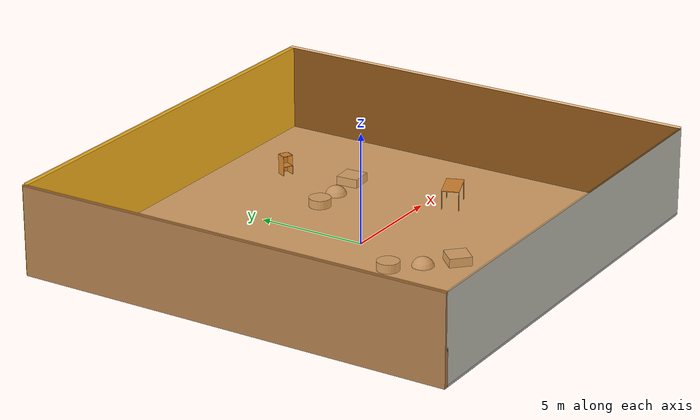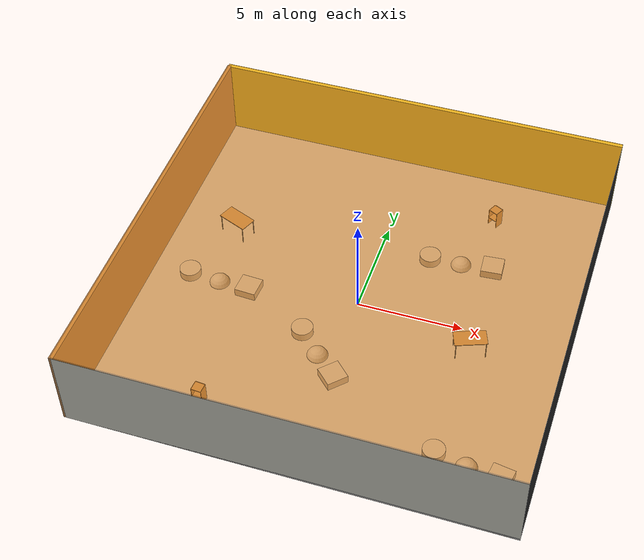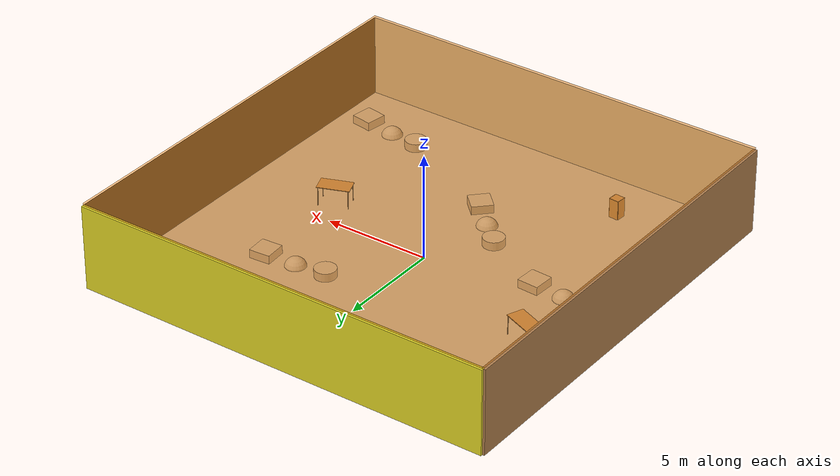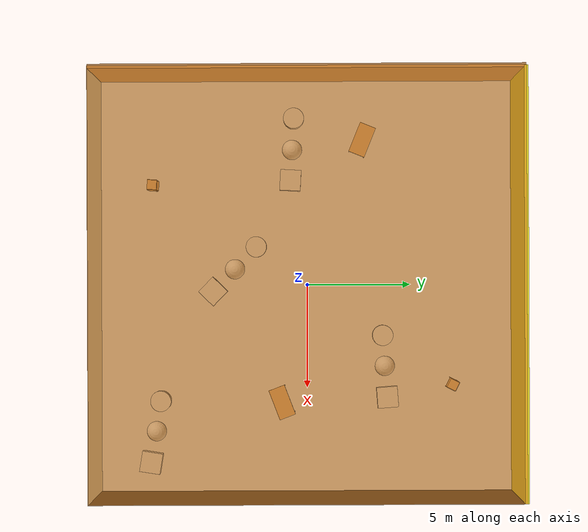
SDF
<sdf version="1.4">
 <world name="default">
  <physics type="ode">
   <max_step_size>0.001</max_step_size>
   <real_time_factor>1</real_time_factor>
   <real_time_update_rate>1000</real_time_update_rate>
   <gravity>0 0 -9.8</gravity>
  </physics>
  <scene><ambient>0.4 0.4 0.4 1</ambient><background>0.7 0.7 0.7 1</background><shadows>1</shadows></scene>
  <model name="Surrounding">
   <static>1</static>
   <link name="Ceiling">
    <collision name="Ceiling_Collision"><geometry><box><size>20 20 0.1</size></box></geometry></collision>
    <visual name="Ceiling_Visual">
     <geometry><box><size>20 20 0.1</size></box></geometry>
     <material>
      <script>
       <uri>file://media/materials/scripts/gazebo.material</uri>
       <name>Gazebo/OrangeTransparent</name>
      </script>
     </material>
    </visual>
    <pose>0 0 4.05 0 0 0</pose>
   </link>
   <link name="Wall_South">
    <collision name="Wall_South_Collision">
     <geometry><box><size>20 0 4</size></box></geometry>
     <pose>0 0 2 0 -0 0</pose>
    </collision>
    <visual name="Wall_South_Visual">
     <pose>0 0 2 0 -0 0</pose>
     <geometry><box><size>20 0 4</size></box></geometry>
     <material>
      <script><uri>file://media/materials/scripts/gazebo.material</uri><name>Gazebo/PaintedWall</name></script>
     </material>
    </visual>
    <velocity_decay><linear>0</linear><angular>0</angular></velocity_decay>
    <pose>0 -10 0 0 -0 0</pose>
   </link>
   <link name="Wall_East">
    <collision name="Wall_21_Collision">
     <geometry><box><size>20 0 4</size></box></geometry>
     <pose>0 0 2 0 -0 0</pose>
    </collision>
    <visual name="Wall_21_Visual">
     <pose>0 0 2 0 -0 0</pose>
     <geometry><box><size>20 0 4</size></box></geometry>
     <material>
      <script><uri>file://media/materials/scripts/gazebo.material</uri><name>Gazebo/Black</name></script>
     </material>
    </visual>
    <velocity_decay><linear>0</linear><angular>0</angular></velocity_decay>
    <pose>10 0 0 0 -0 1.5708</pose>
   </link>
   <link name="Wall_North">
    <collision name="Wall_22_Collision">
     <geometry><box><size>20 0.2 4</size></box></geometry>
     <pose>0 0 2 0 -0 0</pose>
    </collision>
    <visual name="Wall_22_Visual">
     <pose>0 0 2 0 -0 0</pose>
     <geometry><box><size>20 0.2 4</size></box></geometry>
     <material>
      <script><uri>file://media/materials/scripts/gazebo.material</uri><name>Gazebo/YellowGlow</name></script>
     </material>
    </visual>
    <velocity_decay><linear>0</linear><angular>0</angular></velocity_decay>
    <pose>0 10 0 0 -0 0</pose>
   </link>
   <link name="Wall_West">
    <collision name="Wall_23_Collision">
     <geometry><box><size>20 0.2 4</size></box></geometry>
     <pose>0 0 2 0 -0 0</pose>
    </collision>
    <visual name="Wall_23_Visual">
     <pose>0 0 2 0 -0 0</pose>
     <geometry><box><size>20 0.2 4</size></box></geometry>
     <material>
      <script><uri>file://media/materials/scripts/gazebo.material</uri><name>Gazebo/Wood</name></script>
     </material>
    </visual>
    <velocity_decay><linear>0</linear><angular>0</angular></velocity_decay>
    <pose>-10 0 0 0 0 -1.5708</pose>
   </link>
   <link name="Ground_link">
    <collision name="collision">
     <pose>0 0 .05 0 -0 0</pose>
     <geometry><box><size>20 20 0.1</size></box></geometry>
    </collision>
    <visual name="visual">
     <pose>0 0 .05 0 -0 0</pose>
     <geometry><box><size>20 20 0.1</size></box></geometry>
     <material>
      <script><uri>file://media/materials/scripts/gazebo.material</uri><name>Gazebo/Pioneer2Body</name></script>
     </material>
    </visual>
   </link>
   <static>1</static>
  </model>
  <spherical_coordinates>
   <surface_model>EARTH_WGS84</surface_model>
   <latitude_deg>0</latitude_deg>
   <longitude_deg>0</longitude_deg>
   <elevation>0</elevation>
   <heading_deg>0</heading_deg>
  </spherical_coordinates>
  <light name="lightball_0" type="diffuse">
   <diffuse>0.8 0.8 0.8 1</diffuse>
   <specular>0.2 0.2 0.2 1</specular>
   <attenuation>
    <range>100</range>
    <constant>0.7</constant>
    <linear>0.01</linear>
    <quadratic>0.001</quadratic>
   </attenuation>
   <direction>-0.5 0.1 -0.9</direction>
   <pose>-0.727205203746 -9.5771635379 3.66521764665 0 0 0</pose>
  </light>
  <light name="lightball_1" type="diffuse">
   <diffuse>0.8 0.8 0.8 1</diffuse>
   <specular>0.2 0.2 0.2 1</specular>
   <attenuation>
    <range>100</range>
    <constant>0.7</constant>
    <linear>0.01</linear>
    <quadratic>0.001</quadratic>
   </attenuation>
   <direction>-0.5 0.1 -0.9</direction>
   <pose>0.329632601272 8.0975909528 2.93602602369 0 0 0</pose>
  </light>
  <light name="lightball_2" type="diffuse">
   <diffuse>0.8 0.8 0.8 1</diffuse>
   <specular>0.2 0.2 0.2 1</specular>
   <attenuation>
    <range>100</range>
    <constant>0.7</constant>
    <linear>0.01</linear>
    <quadratic>0.001</quadratic>
   </attenuation>
   <direction>-0.5 0.1 -0.9</direction>
   <pose>-6.45166914155 -8.98724785659 1.76162084424 0 0 0</pose>
  </light>
  <light name="lightball_3" type="diffuse">
   <diffuse>0.8 0.8 0.8 1</diffuse>
   <specular>0.2 0.2 0.2 1</specular>
   <attenuation>
    <range>100</range>
    <constant>0.7</constant>
    <linear>0.01</linear>
    <quadratic>0.001</quadratic>
   </attenuation>
   <direction>-0.5 0.1 -0.9</direction>
   <pose>-0.745831827809 -8.45137527083 1.53150133429 0 0 0</pose>
  </light>
  <light name="lightball_4" type="diffuse">
   <diffuse>0.8 0.8 0.8 1</diffuse>
   <specular>0.2 0.2 0.2 1</specular>
   <attenuation>
    <range>100</range>
    <constant>0.7</constant>
    <linear>0.01</linear>
    <quadratic>0.001</quadratic>
   </attenuation>
   <direction>-0.5 0.1 -0.9</direction>
   <pose>0.762604944878 -0.665542343357 3.61462183623 0 0 0</pose>
  </light>
  <light name="lightball_5" type="diffuse">
   <diffuse>0.8 0.8 0.8 1</diffuse>
   <specular>0.2 0.2 0.2 1</specular>
   <attenuation>
    <range>100</range>
    <constant>0.7</constant>
    <linear>0.01</linear>
    <quadratic>0.001</quadratic>
   </attenuation>
   <direction>-0.5 0.1 -0.9</direction>
   <pose>-9.20077498889 0.523864704193 0.785094983218 0 0 0</pose>
  </light>
  <light name="lightball_6" type="diffuse">
   <diffuse>0.8 0.8 0.8 1</diffuse>
   <specular>0.2 0.2 0.2 1</specular>
   <attenuation>
    <range>100</range>
    <constant>0.7</constant>
    <linear>0.01</linear>
    <quadratic>0.001</quadratic>
   </attenuation>
   <direction>-0.5 0.1 -0.9</direction>
   <pose>-5.19887700852 -2.20131295675 3.79668703351 0 0 0</pose>
  </light>
  <light name="lightball_7" type="diffuse">
   <diffuse>0.8 0.8 0.8 1</diffuse>
   <specular>0.2 0.2 0.2 1</specular>
   <attenuation>
    <range>100</range>
    <constant>0.7</constant>
    <linear>0.01</linear>
    <quadratic>0.001</quadratic>
   </attenuation>
   <direction>-0.5 0.1 -0.9</direction>
   <pose>2.26747514796 8.66274138696 3.87639495554 0 0 0</pose>
  </light>
  <light name="lightball_8" type="diffuse">
   <diffuse>0.8 0.8 0.8 1</diffuse>
   <specular>0.2 0.2 0.2 1</specular>
   <attenuation>
    <range>100</range>
    <constant>0.7</constant>
    <linear>0.01</linear>
    <quadratic>0.001</quadratic>
   </attenuation>
   <direction>-0.5 0.1 -0.9</direction>
   <pose>-6.17443313687 0.10422972715 3.24003481937 0 0 0</pose>
  </light>
  <light name="lightball_9" type="diffuse">
   <diffuse>0.8 0.8 0.8 1</diffuse>
   <specular>0.2 0.2 0.2 1</specular>
   <attenuation>
    <range>100</range>
    <constant>0.7</constant>
    <linear>0.01</linear>
    <quadratic>0.001</quadratic>
   </attenuation>
   <direction>-0.5 0.1 -0.9</direction>
   <pose>5.73689909197 0.597121733811 2.99534831443 0 0 0</pose>
  </light>
  <include>
   <uri>model://textured_shapes</uri>
   <pose>-6.57371586761 -0.720438285368 0 0 0 1.51667370739</pose>
  </include>
  <include><uri>model://table</uri><pose>-6.95442447101 2.65621799719 0 0 0 2.7569218932</pose></include>
  <include><uri>model://cabinet</uri><pose>-4.83519360448 -7.44244387947 0 0 0 1.49174700192</pose></include>
  <include>
   <uri>model://textured_shapes</uri>
   <pose>-0.778202150204 -3.51235702323 0 0 0 0.799865139307</pose>
  </include>
  <include><uri>model://table</uri><pose>5.62727302805 -1.22328465117 0 0 0 0.365846066904</pose></include>
  <include>
   <uri>model://textured_shapes</uri>
   <pose>3.94455911816 3.75602839759 0 0 0 1.64443230352</pose>
  </include>
  <include><uri>model://cabinet</uri><pose>4.8015833311 6.98366972791 0 0 0 1.11076760648</pose></include>
  <include>
   <uri>model://textured_shapes</uri>
   <pose>7.0846939391 -7.33969402832 0 0 0 1.41295202934</pose>
  </include>
 </world>
</sdf>

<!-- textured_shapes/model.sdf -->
<sdf version="1.6">
  <model name="textured_shapes">
    <pose>0 0 0.5 0 0 0</pose>
    <link name="box">
      <pose>0 -1.5 0 0 0 0</pose>
      <collision name="collision">
        <geometry>
          <box>
            <size>1 1 1</size>
          </box>
        </geometry>
      </collision>
      <visual name="visual">
        <geometry>
          <box>
            <size>1 1 1</size>
          </box>
        </geometry>
        <material>
          <script>
            <uri>model://../model_source/models/textured_shapes/materials/scripts</uri>
            <uri>model://../model_source/models/textured_shapes/materials/textures</uri>
            <name>TexturedShape/Squares</name>
          </script>
        </material>
      </visual>
    </link>
    <link name="sphere">
      <collision name="collision">
        <geometry>
          <sphere>
            <radius>0.5</radius>
          </sphere>
        </geometry>
      </collision>
      <visual name="visual">
        <geometry>
          <sphere>
            <radius>0.5</radius>
          </sphere>
        </geometry>
        <material>
          <script>
            <uri>model://../model_source/models/textured_shapes/materials/scripts</uri>
            <uri>model://../model_source/models/textured_shapes/materials/textures</uri>
            <name>TexturedShape/Squares</name>
          </script>
        </material>
      </visual>
    </link>
    <link name="cylinder">
      <pose>0 1.5 0 0 0 0</pose>
      <collision name="collision">
        <geometry>
          <cylinder>
            <radius>0.5</radius>
            <length>1</length>
          </cylinder>
        </geometry>
      </collision>
      <visual name="visual">
        <geometry>
          <cylinder>
            <radius>0.5</radius>
            <length>1</length>
          </cylinder>
        </geometry>
        <material>
          <script>
            <uri>model://../model_source/models/textured_shapes/materials/scripts</uri>
            <uri>model://../model_source/models/textured_shapes/materials/textures</uri>
            <name>TexturedShape/Squares</name>
          </script>
        </material>
      </visual>
    </link>
  </model>
</sdf>

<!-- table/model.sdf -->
<sdf version="1.5">
  <model name="table">
    <static>true</static>
    <link name="link">
      <collision name="surface">
        <pose>0 0 1.0 0 0 0</pose>
        <geometry>
          <box>
            <size>1.5 0.8 0.03</size>
          </box>
        </geometry>
        <surface>
          <friction>
            <ode>
              <mu>0.6</mu>
              <mu2>0.6</mu2>
            </ode>
          </friction>
        </surface>
      </collision>
      <visual name="visual1">
        <pose>0 0 1.0 0 0 0</pose>
        <geometry>
          <box>
            <size>1.5 0.8 0.03</size>
          </box>
        </geometry>
        <material>
          <script>
            <uri>model://media/materials/scripts/gazebo.material</uri>
            <name>Gazebo/Wood</name>
          </script>
        </material>
      </visual>
      <collision name="front_left_leg">
        <pose>0.68 0.38 0.5 0 0 0</pose>
        <geometry>
          <cylinder>
            <radius>0.02</radius>
            <length>1.0</length>
          </cylinder>
        </geometry>
      </collision>
      <visual name="front_left_leg">
        <pose>0.68 0.38 0.5 0 0 0</pose>
        <geometry>
          <cylinder>
            <radius>0.02</radius>
            <length>1.0</length>
          </cylinder>
        </geometry>
        <material>
          <script>
            <uri>model://media/materials/scripts/gazebo.material</uri>
            <name>Gazebo/Grey</name>
          </script>
        </material>
      </visual>
      <collision name="front_right_leg">
        <pose>0.68 -0.38 0.5 0 0 0</pose>
        <geometry>
          <cylinder>
            <radius>0.02</radius>
            <length>1.0</length>
          </cylinder>
        </geometry>
      </collision>
      <visual name="front_right_leg">
        <pose>0.68 -0.38 0.5 0 0 0</pose>
        <geometry>
          <cylinder>
            <radius>0.02</radius>
            <length>1.0</length>
          </cylinder>
        </geometry>
        <material>
          <script>
            <uri>model://media/materials/scripts/gazebo.material</uri>
            <name>Gazebo/Grey</name>
          </script>
        </material>
      </visual>
      <collision name="back_right_leg">
        <pose>-0.68 -0.38 0.5 0 0 0</pose>
        <geometry>
          <cylinder>
            <radius>0.02</radius>
            <length>1.0</length>
          </cylinder>
        </geometry>
      </collision>
      <visual name="back_right_leg">
        <pose>-0.68 -0.38 0.5 0 0 0</pose>
        <geometry>
          <cylinder>
            <radius>0.02</radius>
            <length>1.0</length>
          </cylinder>
        </geometry>
        <material>
          <script>
            <uri>model://media/materials/scripts/gazebo.material</uri>
            <name>Gazebo/Grey</name>
          </script>
        </material>
      </visual>
      <collision name="back_left_leg">
        <pose>-0.68 0.38 0.5 0 0 0</pose>
        <geometry>
          <cylinder>
            <radius>0.02</radius>
            <length>1.0</length>
          </cylinder>
        </geometry>
      </collision>
      <visual name="back_left_leg">
        <pose>-0.68 0.38 0.5 0 0 0</pose>
        <geometry>
          <cylinder>
            <radius>0.02</radius>
            <length>1.0</length>
          </cylinder>
        </geometry>
        <material>
          <script>
            <uri>model://media/materials/scripts/gazebo.material</uri>
            <name>Gazebo/Grey</name>
          </script>
        </material>
      </visual>
    </link>
  </model>
</sdf>

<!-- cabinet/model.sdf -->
<sdf version="1.5">
  <model name="cabinet">
    <static>true</static>
    <link name="cabinet_bottom_plate">
      <inertial>
        <pose>0 0 -1 0 0 0</pose>
        <inertia>
          <ixx>2.050000</ixx>
          <ixy>0</ixy>
          <ixz>0</ixz>
          <iyy>2.050000</iyy>
          <iyz>0</iyz>
          <izz>2.050000</izz>
        </inertia>
        <mass>25.000000</mass>
      </inertial>
      <collision name="cabinet_bottom_plate_geom">
        <pose>0 0 0.010000 0 0 0</pose>
        <geometry>
          <box>
            <size>0.450000 0.450000 0.020000</size>
          </box>
        </geometry>
      </collision>
      <visual name="cabinet_bottom_plate_geom_visual">
        <pose>0 0 0.010000 0 0 0</pose>
        <geometry>
          <box>
            <size>0.450000 0.450000 0.020000</size>
          </box>
        </geometry>
        <material>
          <script>
            <uri>model://media/materials/scripts/gazebo.material</uri>
            <name>Gazebo/Wood</name>
          </script>
        </material>
      </visual>
      <collision name="cabinet_bottom_plate_geom_cabinet_back_plate">
        <pose>0.235000 0 0.510000 0 0 0</pose>
        <geometry>
          <box>
            <size>0.020000 0.450000 1.020000</size>
          </box>
        </geometry>
      </collision>
      <visual name="cabinet_bottom_plate_geom_cabinet_back_plate_visual">
        <pose>0.235000 0 0.510000 0 0 0</pose>
        <geometry>
          <box>
            <size>0.020000 0.450000 1.020000</size>
          </box>
        </geometry>
        <material>
          <script>
            <uri>model://media/materials/scripts/gazebo.material</uri>
            <name>Gazebo/Wood</name>
          </script>
        </material>
      </visual>
      <collision name="cabinet_bottom_plate_geom_cabinet_left_plate">
        <pose>0 0.235000 0.510000 0 0 0</pose>
        <geometry>
          <box>
            <size>0.450000 0.020000 1.020000</size>
          </box>
        </geometry>
      </collision>
      <visual name="cabinet_bottom_plate_geom_cabinet_left_plate_visual">
        <pose>0 0.235000 0.510000 0 0 0</pose>
        <geometry>
          <box>
            <size>0.450000 0.020000 1.020000</size>
          </box>
        </geometry>
        <material>
          <script>
            <uri>model://media/materials/scripts/gazebo.material</uri>
            <name>Gazebo/Wood</name>
          </script>
        </material>
      </visual>
      <collision name="cabinet_bottom_plate_geom_cabinet_middle_plate">
        <pose>0 0 0.510000 0 0 0</pose>
        <geometry>
          <box>
            <size>0.450000 0.450000 0.020000</size>
          </box>
        </geometry>
      </collision>
      <visual name="cabinet_bottom_plate_geom_cabinet_middle_plate_visual">
        <pose>0 0 0.510000 0 0 0</pose>
        <geometry>
          <box>
            <size>0.450000 0.450000 0.020000</size>
          </box>
        </geometry>
        <material>
          <script>
            <uri>model://media/materials/scripts/gazebo.material</uri>
            <name>Gazebo/Wood</name>
          </script>
        </material>
      </visual>
      <collision name="cabinet_bottom_plate_geom_cabinet_right_plate">
        <pose>0 -0.235000 0.510000 0 0 0</pose>
        <geometry>
          <box>
            <size>0.450000 0.020000 1.020000</size>
          </box>
        </geometry>
      </collision>
      <visual name="cabinet_bottom_plate_geom_cabinet_right_plate_visual">
        <pose>0 -0.235000 0.510000 0 0 0</pose>
        <geometry>
          <box>
            <size>0.450000 0.020000 1.020000</size>
          </box>
        </geometry>
        <material>
          <script>
            <uri>model://media/materials/scripts/gazebo.material</uri>
            <name>Gazebo/Wood</name>
          </script>
        </material>
      </visual>
      <collision name="cabinet_bottom_plate_geom_cabinet_top_plate">
        <pose>0 0 1.010000 0 0 0</pose>
        <geometry>
          <box>
            <size>0.450000 0.450000 0.020000</size>
          </box>
        </geometry>
      </collision>
      <visual name="cabinet_bottom_plate_geom_cabinet_top_plate_visual">
        <pose>0 0 1.010000 0 0 0</pose>
        <geometry>
          <box>
            <size>0.450000 0.450000 0.020000</size>
          </box>
        </geometry>
        <material>
          <script>
            <uri>model://media/materials/scripts/gazebo.material</uri>
            <name>Gazebo/Wood</name>
          </script>
        </material>
      </visual>
    </link>
  </model>
</sdf>
